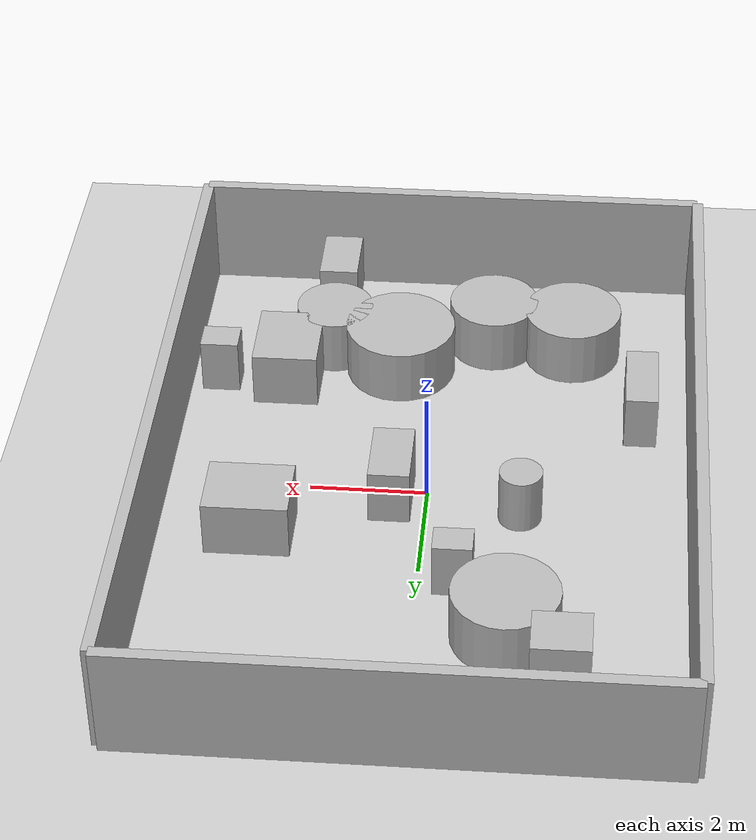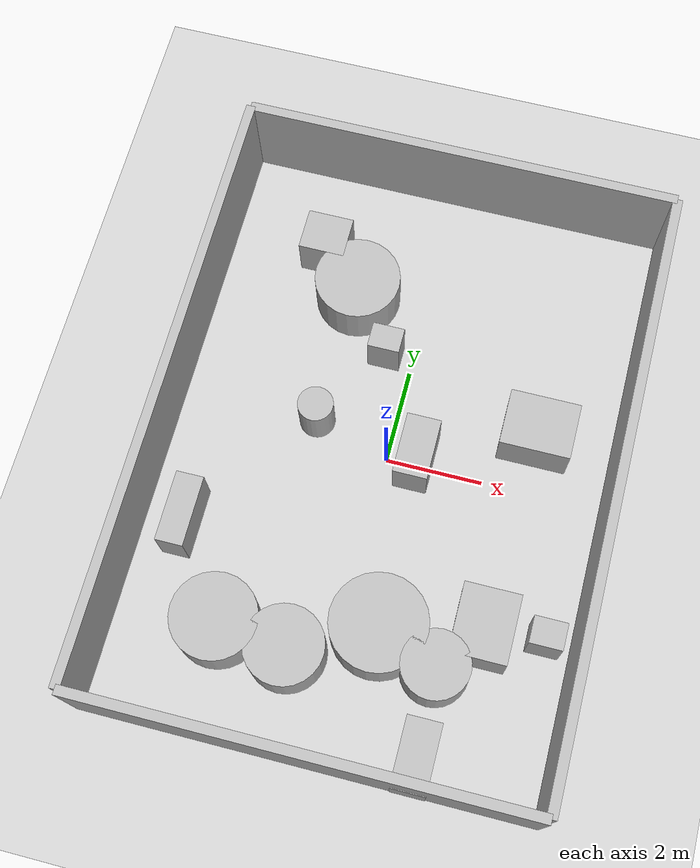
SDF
<?xml version="1.0"?>
<sdf version="1.6">
  <world name="env_30">

    <include><uri>model://ground_plane</uri></include>
    <include><uri>model://sun</uri></include>

    <!-- WALLS -->
    <model name="wall_north"><static>true</static><pose>0 6.305878803494005 1 0 0 0</pose>
      <link name="link"><collision name="collision">
        <geometry><box><size>9.129821873130748 0.2 2</size></box></geometry>
      </collision><visual name="visual">
        <geometry><box><size>9.129821873130748 0.2 2</size></box></geometry>
      </visual></link>
    </model>

    <model name="wall_south"><static>true</static><pose>0 -6.305878803494005 1 0 0 0</pose>
      <link name="link"><collision name="collision">
        <geometry><box><size>9.129821873130748 0.2 2</size></box></geometry>
      </collision><visual name="visual">
        <geometry><box><size>9.129821873130748 0.2 2</size></box></geometry>
      </visual></link>
    </model>

    <model name="wall_east"><static>true</static><pose>4.564910936565374 0 1 0 0 1.57</pose>
      <link name="link"><collision name="collision">
        <geometry><box><size>12.61175760698801 0.2 2</size></box></geometry>
      </collision><visual name="visual">
        <geometry><box><size>12.61175760698801 0.2 2</size></box></geometry>
      </visual></link>
    </model>

    <model name="wall_west"><static>true</static><pose>-4.564910936565374 0 1 0 0 1.57</pose>
      <link name="link"><collision name="collision">
        <geometry><box><size>12.61175760698801 0.2 2</size></box></geometry>
      </collision><visual name="visual">
        <geometry><box><size>12.61175760698801 0.2 2</size></box></geometry>
      </visual></link>
    </model>

    <!-- SENSOR -->

    <model name="lidar_sensor">
      <static>true</static>
      <pose>-1.0770842596521977 4.678651920788436 0.4 0 0 0</pose>
      <link name="link">
        <sensor name="lidar" type="ray">
          <pose>0 0 0 0 0 0</pose>
          <visualize>true</visualize>
          <always_on>true</always_on>
          <update_rate>10</update_rate>
          <ray>
            <scan><horizontal>
              <samples>720</samples>
              <resolution>1</resolution>
              <min_angle>-3.14159</min_angle>
              <max_angle>3.14159</max_angle>
            </horizontal></scan>
            <range><min>0.15</min><max>20.0</max><resolution>0.01</resolution></range>
          </ray>
          <plugin name="lidar_plugin" filename="liblidar_plugin.so"/>
        </sensor>
      </link>
    </model>

    <!-- OBSTACLES -->

    <model name="obstacle_0">
      <static>true</static>
      <pose>-2.363892200186334 -4.160755690565032 0.5 0 0 0</pose>
      <link name="link">
        <collision name="collision">
          <geometry><cylinder><radius>0.87</radius><length>1.0</length></cylinder></geometry>
        </collision>
        <visual name="visual">
          <geometry><cylinder><radius>0.87</radius><length>1.0</length></cylinder></geometry>
        </visual>
      </link>
    </model>

    <model name="obstacle_1">
      <static>true</static>
      <pose>-0.9146680156947546 -4.360913491570788 0.5 0 0 0</pose>
      <link name="link">
        <collision name="collision">
          <geometry><cylinder><radius>0.8</radius><length>1.0</length></cylinder></geometry>
        </collision>
        <visual name="visual">
          <geometry><cylinder><radius>0.8</radius><length>1.0</length></cylinder></geometry>
        </visual>
      </link>
    </model>

    <model name="obstacle_2">
      <static>true</static>
      <pose>2.7113445164822085 -3.0161036866596174 0.5 0 0 0</pose>
      <link name="link">
        <collision name="collision">
          <geometry><box><size>1.15 1.41 1.0</size></box></geometry>
        </collision>
        <visual name="visual">
          <geometry><box><size>1.15 1.41 1.0</size></box></geometry>
        </visual>
      </link>
    </model>

    <model name="obstacle_3">
      <static>true</static>
      <pose>-3.6302126149648775 -2.2740766668391044 0.5 0 0 0</pose>
      <link name="link">
        <collision name="collision">
          <geometry><box><size>0.57 1.45 1.0</size></box></geometry>
        </collision>
        <visual name="visual">
          <geometry><box><size>0.57 1.45 1.0</size></box></geometry>
        </visual>
      </link>
    </model>

    <model name="obstacle_4">
      <static>true</static>
      <pose>2.01851294609936 -5.731630122043643 0.5 0 0 0</pose>
      <link name="link">
        <collision name="collision">
          <geometry><box><size>0.7 1.38 1.0</size></box></geometry>
        </collision>
        <visual name="visual">
          <geometry><box><size>0.7 1.38 1.0</size></box></geometry>
        </visual>
      </link>
    </model>

    <model name="obstacle_5">
      <static>true</static>
      <pose>1.973478538221694 -4.011006695868045 0.5 0 0 0</pose>
      <link name="link">
        <collision name="collision">
          <geometry><cylinder><radius>0.69</radius><length>1.0</length></cylinder></geometry>
        </collision>
        <visual name="visual">
          <geometry><cylinder><radius>0.69</radius><length>1.0</length></cylinder></geometry>
        </visual>
      </link>
    </model>

    <model name="obstacle_6">
      <static>true</static>
      <pose>3.9195682196272053 -2.907905659475037 0.5 0 0 0</pose>
      <link name="link">
        <collision name="collision">
          <geometry><box><size>0.67 0.55 1.0</size></box></geometry>
        </collision>
        <visual name="visual">
          <geometry><box><size>0.67 0.55 1.0</size></box></geometry>
        </visual>
      </link>
    </model>

    <model name="obstacle_7">
      <static>true</static>
      <pose>-1.6191985304258822 0.5017008965929195 0.5 0 0 0</pose>
      <link name="link">
        <collision name="collision">
          <geometry><cylinder><radius>0.37</radius><length>1.0</length></cylinder></geometry>
        </collision>
        <visual name="visual">
          <geometry><cylinder><radius>0.37</radius><length>1.0</length></cylinder></geometry>
        </visual>
      </link>
    </model>

    <model name="obstacle_8">
      <static>true</static>
      <pose>0.5890506356710423 0.13655088642876745 0.5 0 0 0</pose>
      <link name="link">
        <collision name="collision">
          <geometry><box><size>0.71 1.27 1.0</size></box></geometry>
        </collision>
        <visual name="visual">
          <geometry><box><size>0.71 1.27 1.0</size></box></geometry>
        </visual>
      </link>
    </model>

    <model name="obstacle_9">
      <static>true</static>
      <pose>-1.5073018108022134 3.4480309816026686 0.5 0 0 0</pose>
      <link name="link">
        <collision name="collision">
          <geometry><cylinder><radius>0.9</radius><length>1.0</length></cylinder></geometry>
        </collision>
        <visual name="visual">
          <geometry><cylinder><radius>0.9</radius><length>1.0</length></cylinder></geometry>
        </visual>
      </link>
    </model>

    <model name="obstacle_10">
      <static>true</static>
      <pose>2.887735977143942 1.201931417012804 0.5 0 0 0</pose>
      <link name="link">
        <collision name="collision">
          <geometry><box><size>1.45 1.17 1.0</size></box></geometry>
        </collision>
        <visual name="visual">
          <geometry><box><size>1.45 1.17 1.0</size></box></geometry>
        </visual>
      </link>
    </model>

    <model name="obstacle_11">
      <static>true</static>
      <pose>-2.4197054555472652 4.299863589191652 0.5 0 0 0</pose>
      <link name="link">
        <collision name="collision">
          <geometry><box><size>0.97 0.87 1.0</size></box></geometry>
        </collision>
        <visual name="visual">
          <geometry><box><size>0.97 0.87 1.0</size></box></geometry>
        </visual>
      </link>
    </model>

    <model name="obstacle_12">
      <static>true</static>
      <pose>0.7300977138492968 -3.5003981378758815 0.5 0 0 0</pose>
      <link name="link">
        <collision name="collision">
          <geometry><cylinder><radius>0.98</radius><length>1.0</length></cylinder></geometry>
        </collision>
        <visual name="visual">
          <geometry><cylinder><radius>0.98</radius><length>1.0</length></cylinder></geometry>
        </visual>
      </link>
    </model>

    <model name="obstacle_13">
      <static>true</static>
      <pose>-0.5934851394442249 2.2711332667832167 0.5 0 0 0</pose>
      <link name="link">
        <collision name="collision">
          <geometry><box><size>0.67 0.53 1.0</size></box></geometry>
        </collision>
        <visual name="visual">
          <geometry><box><size>0.67 0.53 1.0</size></box></geometry>
        </visual>
      </link>
    </model>

  </world>
</sdf>
